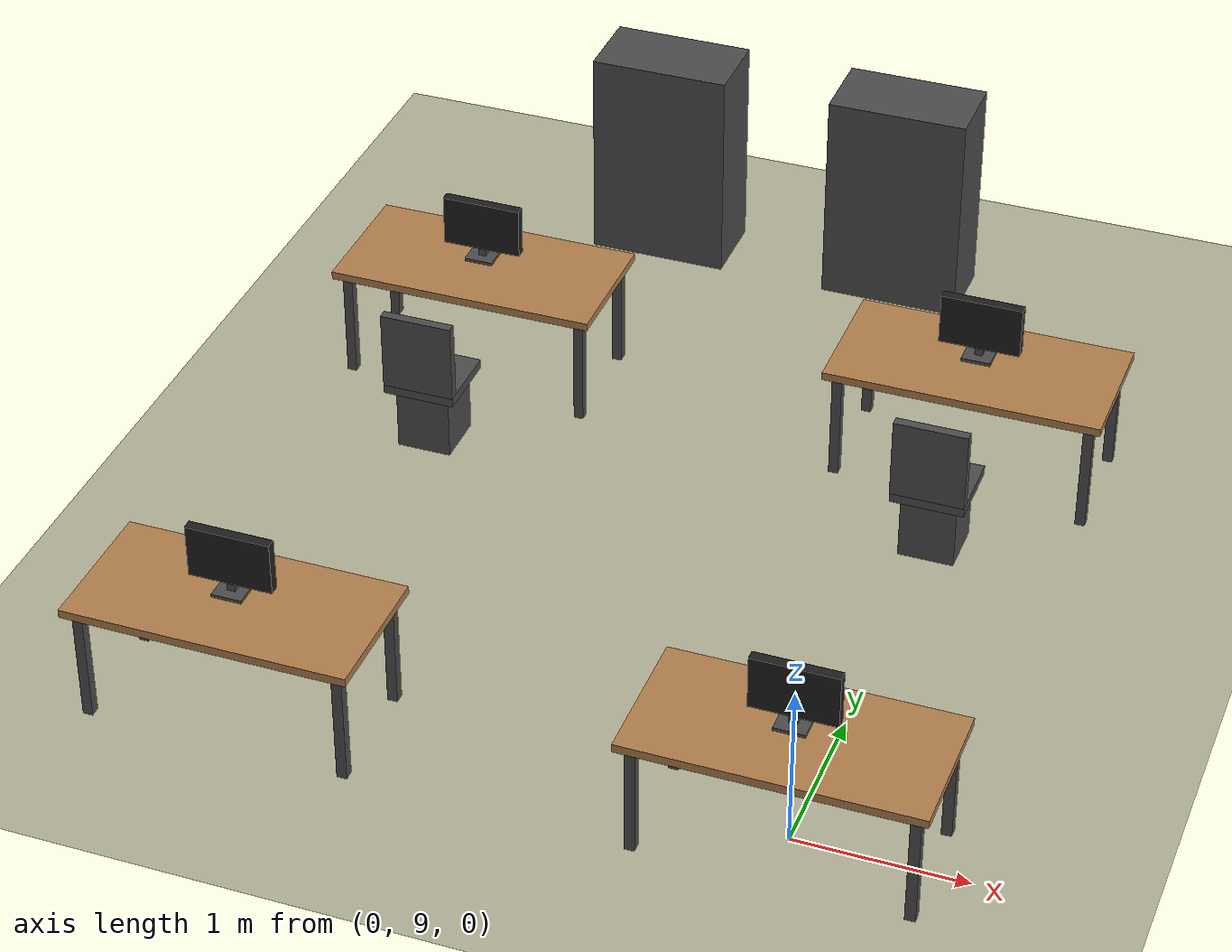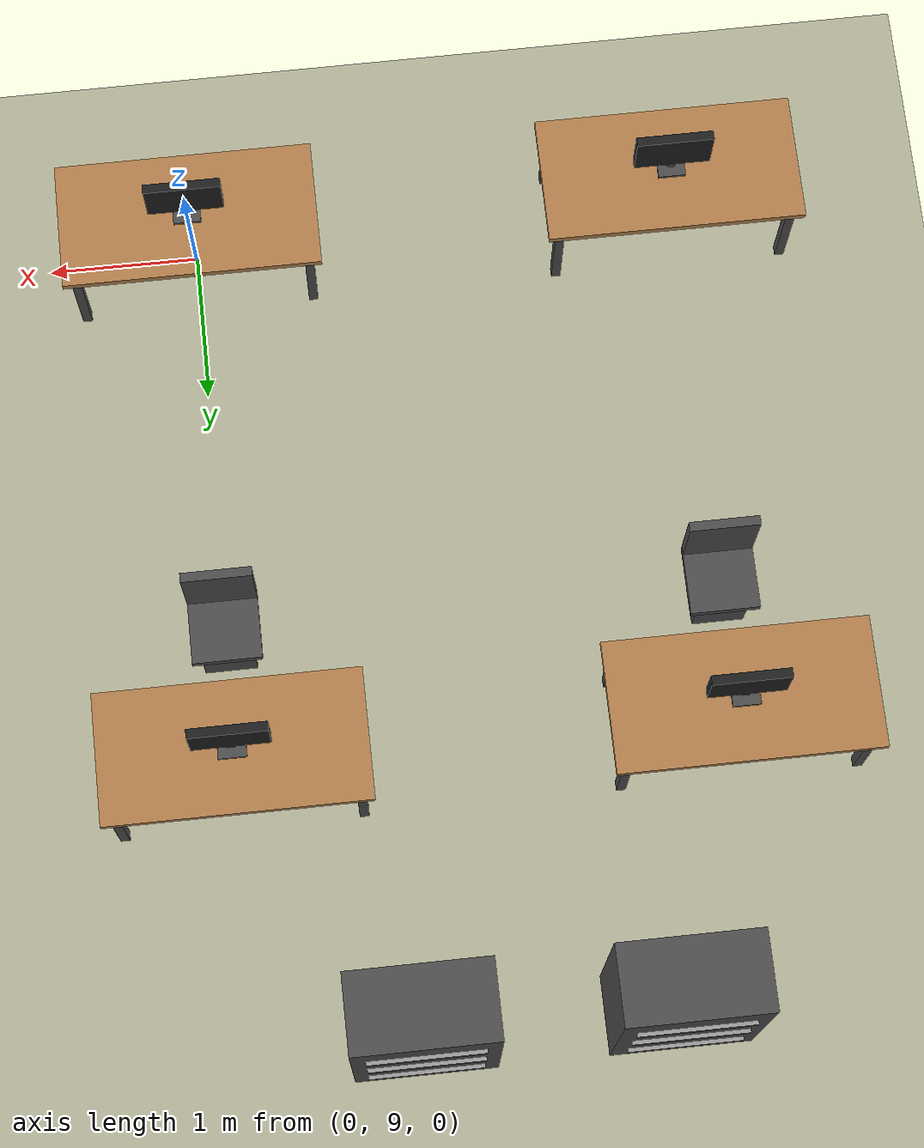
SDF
<sdf version="1.6">
 <world name="smart_building">
  <model name="ground_plane">
   <static>true</static>
   <link name="link">
    <collision name="collision">
     <geometry><plane><normal>0 0 1</normal><size>100 100</size></plane></geometry>
     <surface><friction><ode><mu>1.0</mu><mu2>1.0</mu2></ode></friction></surface>
    </collision>
    <visual name="visual">
     <geometry><plane><normal>0 0 1</normal><size>100 100</size></plane></geometry>
     <material>
      <script><uri>file://media/materials/scripts/gazebo.material</uri><name>Gazebo/Residential</name></script>
     </material>
    </visual>
   </link>
  </model>
  <model name="office_desk_3">
   <static>true</static>
   <pose>-3.2000 9.0000 0.0000 0.0000 0.0000 0.0000</pose>
   <link name="link_0">
    <pose>0.0000 0.0000 0.7250 0.0000 0.0000 0.0000</pose>
    <collision name="link_0_collision">
     <geometry><box><size>1.7000 0.8500 0.0500</size></box></geometry>
    </collision>
    <visual name="link_0_visual">
     <geometry><box><size>1.7000 0.8500 0.0500</size></box></geometry>
     <material>
      <script><uri>file://media/materials/scripts/gazebo.material</uri><name>Gazebo/Wood</name></script>
     </material>
    </visual>
   </link>
   <link name="link_1">
    <pose>-0.7700 -0.3450 0.3500 0.0000 0.0000 0.0000</pose>
    <collision name="link_1_collision">
     <geometry><box><size>0.0600 0.0600 0.7000</size></box></geometry>
    </collision>
    <visual name="link_1_visual">
     <geometry><box><size>0.0600 0.0600 0.7000</size></box></geometry>
     <material>
      <script><uri>file://media/materials/scripts/gazebo.material</uri><name>Gazebo/DarkGrey</name></script>
     </material>
    </visual>
   </link>
   <link name="link_2">
    <pose>-0.7700 0.3450 0.3500 0.0000 0.0000 0.0000</pose>
    <collision name="link_2_collision">
     <geometry><box><size>0.0600 0.0600 0.7000</size></box></geometry>
    </collision>
    <visual name="link_2_visual">
     <geometry><box><size>0.0600 0.0600 0.7000</size></box></geometry>
     <material>
      <script><uri>file://media/materials/scripts/gazebo.material</uri><name>Gazebo/DarkGrey</name></script>
     </material>
    </visual>
   </link>
   <link name="link_3">
    <pose>0.7700 -0.3450 0.3500 0.0000 0.0000 0.0000</pose>
    <collision name="link_3_collision">
     <geometry><box><size>0.0600 0.0600 0.7000</size></box></geometry>
    </collision>
    <visual name="link_3_visual">
     <geometry><box><size>0.0600 0.0600 0.7000</size></box></geometry>
     <material>
      <script><uri>file://media/materials/scripts/gazebo.material</uri><name>Gazebo/DarkGrey</name></script>
     </material>
    </visual>
   </link>
   <link name="link_4">
    <pose>0.7700 0.3450 0.3500 0.0000 0.0000 0.0000</pose>
    <collision name="link_4_collision">
     <geometry><box><size>0.0600 0.0600 0.7000</size></box></geometry>
    </collision>
    <visual name="link_4_visual">
     <geometry><box><size>0.0600 0.0600 0.7000</size></box></geometry>
     <material>
      <script><uri>file://media/materials/scripts/gazebo.material</uri><name>Gazebo/DarkGrey</name></script>
     </material>
    </visual>
   </link>
   <link name="link_5">
    <pose>0.0000 0.0000 1.0300 0.0000 0.0000 0.0000</pose>
    <collision name="link_5_collision">
     <geometry><box><size>0.5000 0.0600 0.3200</size></box></geometry>
    </collision>
    <visual name="link_5_visual">
     <geometry><box><size>0.5000 0.0600 0.3200</size></box></geometry>
     <material>
      <script><uri>file://media/materials/scripts/gazebo.material</uri><name>Gazebo/FlatBlack</name></script>
     </material>
    </visual>
   </link>
   <link name="link_6">
    <pose>0.0000 0.0000 0.8100 0.0000 0.0000 0.0000</pose>
    <collision name="link_6_collision">
     <geometry><box><size>0.1800 0.1800 0.0200</size></box></geometry>
    </collision>
    <visual name="link_6_visual">
     <geometry><box><size>0.1800 0.1800 0.0200</size></box></geometry>
     <material>
      <script><uri>file://media/materials/scripts/gazebo.material</uri><name>Gazebo/DarkGrey</name></script>
     </material>
    </visual>
   </link>
   <link name="link_7">
    <pose>0.0000 0.0000 0.8700 0.0000 0.0000 0.0000</pose>
    <collision name="link_7_collision">
     <geometry><box><size>0.0500 0.0500 0.1200</size></box></geometry>
    </collision>
    <visual name="link_7_visual">
     <geometry><box><size>0.0500 0.0500 0.1200</size></box></geometry>
     <material>
      <script><uri>file://media/materials/scripts/gazebo.material</uri><name>Gazebo/DarkGrey</name></script>
     </material>
    </visual>
   </link>
  </model>
  <model name="office_desk_4">
   <static>true</static>
   <pose>0.0000 9.0000 0.0000 0.0000 0.0000 0.0000</pose>
   <link name="link_0">
    <pose>0.0000 0.0000 0.7250 0.0000 0.0000 0.0000</pose>
    <collision name="link_0_collision">
     <geometry><box><size>1.7000 0.8500 0.0500</size></box></geometry>
    </collision>
    <visual name="link_0_visual">
     <geometry><box><size>1.7000 0.8500 0.0500</size></box></geometry>
     <material>
      <script><uri>file://media/materials/scripts/gazebo.material</uri><name>Gazebo/Wood</name></script>
     </material>
    </visual>
   </link>
   <link name="link_1">
    <pose>-0.7700 -0.3450 0.3500 0.0000 0.0000 0.0000</pose>
    <collision name="link_1_collision">
     <geometry><box><size>0.0600 0.0600 0.7000</size></box></geometry>
    </collision>
    <visual name="link_1_visual">
     <geometry><box><size>0.0600 0.0600 0.7000</size></box></geometry>
     <material>
      <script><uri>file://media/materials/scripts/gazebo.material</uri><name>Gazebo/DarkGrey</name></script>
     </material>
    </visual>
   </link>
   <link name="link_2">
    <pose>-0.7700 0.3450 0.3500 0.0000 0.0000 0.0000</pose>
    <collision name="link_2_collision">
     <geometry><box><size>0.0600 0.0600 0.7000</size></box></geometry>
    </collision>
    <visual name="link_2_visual">
     <geometry><box><size>0.0600 0.0600 0.7000</size></box></geometry>
     <material>
      <script><uri>file://media/materials/scripts/gazebo.material</uri><name>Gazebo/DarkGrey</name></script>
     </material>
    </visual>
   </link>
   <link name="link_3">
    <pose>0.7700 -0.3450 0.3500 0.0000 0.0000 0.0000</pose>
    <collision name="link_3_collision">
     <geometry><box><size>0.0600 0.0600 0.7000</size></box></geometry>
    </collision>
    <visual name="link_3_visual">
     <geometry><box><size>0.0600 0.0600 0.7000</size></box></geometry>
     <material>
      <script><uri>file://media/materials/scripts/gazebo.material</uri><name>Gazebo/DarkGrey</name></script>
     </material>
    </visual>
   </link>
   <link name="link_4">
    <pose>0.7700 0.3450 0.3500 0.0000 0.0000 0.0000</pose>
    <collision name="link_4_collision">
     <geometry><box><size>0.0600 0.0600 0.7000</size></box></geometry>
    </collision>
    <visual name="link_4_visual">
     <geometry><box><size>0.0600 0.0600 0.7000</size></box></geometry>
     <material>
      <script><uri>file://media/materials/scripts/gazebo.material</uri><name>Gazebo/DarkGrey</name></script>
     </material>
    </visual>
   </link>
   <link name="link_5">
    <pose>0.0000 0.0000 1.0300 0.0000 0.0000 0.0000</pose>
    <collision name="link_5_collision">
     <geometry><box><size>0.5000 0.0600 0.3200</size></box></geometry>
    </collision>
    <visual name="link_5_visual">
     <geometry><box><size>0.5000 0.0600 0.3200</size></box></geometry>
     <material>
      <script><uri>file://media/materials/scripts/gazebo.material</uri><name>Gazebo/FlatBlack</name></script>
     </material>
    </visual>
   </link>
   <link name="link_6">
    <pose>0.0000 0.0000 0.8100 0.0000 0.0000 0.0000</pose>
    <collision name="link_6_collision">
     <geometry><box><size>0.1800 0.1800 0.0200</size></box></geometry>
    </collision>
    <visual name="link_6_visual">
     <geometry><box><size>0.1800 0.1800 0.0200</size></box></geometry>
     <material>
      <script><uri>file://media/materials/scripts/gazebo.material</uri><name>Gazebo/DarkGrey</name></script>
     </material>
    </visual>
   </link>
   <link name="link_7">
    <pose>0.0000 0.0000 0.8700 0.0000 0.0000 0.0000</pose>
    <collision name="link_7_collision">
     <geometry><box><size>0.0500 0.0500 0.1200</size></box></geometry>
    </collision>
    <visual name="link_7_visual">
     <geometry><box><size>0.0500 0.0500 0.1200</size></box></geometry>
     <material>
      <script><uri>file://media/materials/scripts/gazebo.material</uri><name>Gazebo/DarkGrey</name></script>
     </material>
    </visual>
   </link>
  </model>
  <model name="office_desk_6">
   <static>true</static>
   <pose>-3.2000 12.6000 0.0000 0.0000 0.0000 0.0000</pose>
   <link name="link_0">
    <pose>0.0000 0.0000 0.7250 0.0000 0.0000 0.0000</pose>
    <collision name="link_0_collision">
     <geometry><box><size>1.7000 0.8500 0.0500</size></box></geometry>
    </collision>
    <visual name="link_0_visual">
     <geometry><box><size>1.7000 0.8500 0.0500</size></box></geometry>
     <material>
      <script><uri>file://media/materials/scripts/gazebo.material</uri><name>Gazebo/Wood</name></script>
     </material>
    </visual>
   </link>
   <link name="link_1">
    <pose>-0.7700 -0.3450 0.3500 0.0000 0.0000 0.0000</pose>
    <collision name="link_1_collision">
     <geometry><box><size>0.0600 0.0600 0.7000</size></box></geometry>
    </collision>
    <visual name="link_1_visual">
     <geometry><box><size>0.0600 0.0600 0.7000</size></box></geometry>
     <material>
      <script><uri>file://media/materials/scripts/gazebo.material</uri><name>Gazebo/DarkGrey</name></script>
     </material>
    </visual>
   </link>
   <link name="link_2">
    <pose>-0.7700 0.3450 0.3500 0.0000 0.0000 0.0000</pose>
    <collision name="link_2_collision">
     <geometry><box><size>0.0600 0.0600 0.7000</size></box></geometry>
    </collision>
    <visual name="link_2_visual">
     <geometry><box><size>0.0600 0.0600 0.7000</size></box></geometry>
     <material>
      <script><uri>file://media/materials/scripts/gazebo.material</uri><name>Gazebo/DarkGrey</name></script>
     </material>
    </visual>
   </link>
   <link name="link_3">
    <pose>0.7700 -0.3450 0.3500 0.0000 0.0000 0.0000</pose>
    <collision name="link_3_collision">
     <geometry><box><size>0.0600 0.0600 0.7000</size></box></geometry>
    </collision>
    <visual name="link_3_visual">
     <geometry><box><size>0.0600 0.0600 0.7000</size></box></geometry>
     <material>
      <script><uri>file://media/materials/scripts/gazebo.material</uri><name>Gazebo/DarkGrey</name></script>
     </material>
    </visual>
   </link>
   <link name="link_4">
    <pose>0.7700 0.3450 0.3500 0.0000 0.0000 0.0000</pose>
    <collision name="link_4_collision">
     <geometry><box><size>0.0600 0.0600 0.7000</size></box></geometry>
    </collision>
    <visual name="link_4_visual">
     <geometry><box><size>0.0600 0.0600 0.7000</size></box></geometry>
     <material>
      <script><uri>file://media/materials/scripts/gazebo.material</uri><name>Gazebo/DarkGrey</name></script>
     </material>
    </visual>
   </link>
   <link name="link_5">
    <pose>0.0000 0.0000 1.0300 0.0000 0.0000 0.0000</pose>
    <collision name="link_5_collision">
     <geometry><box><size>0.5000 0.0600 0.3200</size></box></geometry>
    </collision>
    <visual name="link_5_visual">
     <geometry><box><size>0.5000 0.0600 0.3200</size></box></geometry>
     <material>
      <script><uri>file://media/materials/scripts/gazebo.material</uri><name>Gazebo/FlatBlack</name></script>
     </material>
    </visual>
   </link>
   <link name="link_6">
    <pose>0.0000 0.0000 0.8100 0.0000 0.0000 0.0000</pose>
    <collision name="link_6_collision">
     <geometry><box><size>0.1800 0.1800 0.0200</size></box></geometry>
    </collision>
    <visual name="link_6_visual">
     <geometry><box><size>0.1800 0.1800 0.0200</size></box></geometry>
     <material>
      <script><uri>file://media/materials/scripts/gazebo.material</uri><name>Gazebo/DarkGrey</name></script>
     </material>
    </visual>
   </link>
   <link name="link_7">
    <pose>0.0000 0.0000 0.8700 0.0000 0.0000 0.0000</pose>
    <collision name="link_7_collision">
     <geometry><box><size>0.0500 0.0500 0.1200</size></box></geometry>
    </collision>
    <visual name="link_7_visual">
     <geometry><box><size>0.0500 0.0500 0.1200</size></box></geometry>
     <material>
      <script><uri>file://media/materials/scripts/gazebo.material</uri><name>Gazebo/DarkGrey</name></script>
     </material>
    </visual>
   </link>
  </model>
  <model name="office_chair_6">
   <static>true</static>
   <pose>-3.2000 11.7500 0.0000 0.0000 0.0000 0.0000</pose>
   <link name="link_0">
    <pose>0.0000 0.0000 0.4400 0.0000 0.0000 0.0000</pose>
    <collision name="link_0_collision">
     <geometry><box><size>0.4500 0.4500 0.0600</size></box></geometry>
    </collision>
    <visual name="link_0_visual">
     <geometry><box><size>0.4500 0.4500 0.0600</size></box></geometry>
     <material>
      <script><uri>file://media/materials/scripts/gazebo.material</uri><name>Gazebo/DarkGrey</name></script>
     </material>
    </visual>
   </link>
   <link name="link_1">
    <pose>0.0000 -0.2000 0.7200 0.0000 0.0000 0.0000</pose>
    <collision name="link_1_collision">
     <geometry><box><size>0.4500 0.0600 0.5000</size></box></geometry>
    </collision>
    <visual name="link_1_visual">
     <geometry><box><size>0.4500 0.0600 0.5000</size></box></geometry>
     <material>
      <script><uri>file://media/materials/scripts/gazebo.material</uri><name>Gazebo/DarkGrey</name></script>
     </material>
    </visual>
   </link>
   <link name="link_2">
    <pose>0.0000 0.0000 0.2100 0.0000 0.0000 0.0000</pose>
    <collision name="link_2_collision">
     <geometry><box><size>0.3400 0.3400 0.4200</size></box></geometry>
    </collision>
    <visual name="link_2_visual">
     <geometry><box><size>0.3400 0.3400 0.4200</size></box></geometry>
     <material>
      <script><uri>file://media/materials/scripts/gazebo.material</uri><name>Gazebo/DarkGrey</name></script>
     </material>
    </visual>
   </link>
  </model>
  <model name="office_desk_7">
   <static>true</static>
   <pose>0.0000 12.6000 0.0000 0.0000 0.0000 0.0000</pose>
   <link name="link_0">
    <pose>0.0000 0.0000 0.7250 0.0000 0.0000 0.0000</pose>
    <collision name="link_0_collision">
     <geometry><box><size>1.7000 0.8500 0.0500</size></box></geometry>
    </collision>
    <visual name="link_0_visual">
     <geometry><box><size>1.7000 0.8500 0.0500</size></box></geometry>
     <material>
      <script><uri>file://media/materials/scripts/gazebo.material</uri><name>Gazebo/Wood</name></script>
     </material>
    </visual>
   </link>
   <link name="link_1">
    <pose>-0.7700 -0.3450 0.3500 0.0000 0.0000 0.0000</pose>
    <collision name="link_1_collision">
     <geometry><box><size>0.0600 0.0600 0.7000</size></box></geometry>
    </collision>
    <visual name="link_1_visual">
     <geometry><box><size>0.0600 0.0600 0.7000</size></box></geometry>
     <material>
      <script><uri>file://media/materials/scripts/gazebo.material</uri><name>Gazebo/DarkGrey</name></script>
     </material>
    </visual>
   </link>
   <link name="link_2">
    <pose>-0.7700 0.3450 0.3500 0.0000 0.0000 0.0000</pose>
    <collision name="link_2_collision">
     <geometry><box><size>0.0600 0.0600 0.7000</size></box></geometry>
    </collision>
    <visual name="link_2_visual">
     <geometry><box><size>0.0600 0.0600 0.7000</size></box></geometry>
     <material>
      <script><uri>file://media/materials/scripts/gazebo.material</uri><name>Gazebo/DarkGrey</name></script>
     </material>
    </visual>
   </link>
   <link name="link_3">
    <pose>0.7700 -0.3450 0.3500 0.0000 0.0000 0.0000</pose>
    <collision name="link_3_collision">
     <geometry><box><size>0.0600 0.0600 0.7000</size></box></geometry>
    </collision>
    <visual name="link_3_visual">
     <geometry><box><size>0.0600 0.0600 0.7000</size></box></geometry>
     <material>
      <script><uri>file://media/materials/scripts/gazebo.material</uri><name>Gazebo/DarkGrey</name></script>
     </material>
    </visual>
   </link>
   <link name="link_4">
    <pose>0.7700 0.3450 0.3500 0.0000 0.0000 0.0000</pose>
    <collision name="link_4_collision">
     <geometry><box><size>0.0600 0.0600 0.7000</size></box></geometry>
    </collision>
    <visual name="link_4_visual">
     <geometry><box><size>0.0600 0.0600 0.7000</size></box></geometry>
     <material>
      <script><uri>file://media/materials/scripts/gazebo.material</uri><name>Gazebo/DarkGrey</name></script>
     </material>
    </visual>
   </link>
   <link name="link_5">
    <pose>0.0000 0.0000 1.0300 0.0000 0.0000 0.0000</pose>
    <collision name="link_5_collision">
     <geometry><box><size>0.5000 0.0600 0.3200</size></box></geometry>
    </collision>
    <visual name="link_5_visual">
     <geometry><box><size>0.5000 0.0600 0.3200</size></box></geometry>
     <material>
      <script><uri>file://media/materials/scripts/gazebo.material</uri><name>Gazebo/FlatBlack</name></script>
     </material>
    </visual>
   </link>
   <link name="link_6">
    <pose>0.0000 0.0000 0.8100 0.0000 0.0000 0.0000</pose>
    <collision name="link_6_collision">
     <geometry><box><size>0.1800 0.1800 0.0200</size></box></geometry>
    </collision>
    <visual name="link_6_visual">
     <geometry><box><size>0.1800 0.1800 0.0200</size></box></geometry>
     <material>
      <script><uri>file://media/materials/scripts/gazebo.material</uri><name>Gazebo/DarkGrey</name></script>
     </material>
    </visual>
   </link>
   <link name="link_7">
    <pose>0.0000 0.0000 0.8700 0.0000 0.0000 0.0000</pose>
    <collision name="link_7_collision">
     <geometry><box><size>0.0500 0.0500 0.1200</size></box></geometry>
    </collision>
    <visual name="link_7_visual">
     <geometry><box><size>0.0500 0.0500 0.1200</size></box></geometry>
     <material>
      <script><uri>file://media/materials/scripts/gazebo.material</uri><name>Gazebo/DarkGrey</name></script>
     </material>
    </visual>
   </link>
  </model>
  <model name="office_chair_7">
   <static>true</static>
   <pose>0.0000 11.7500 0.0000 0.0000 0.0000 0.0000</pose>
   <link name="link_0">
    <pose>0.0000 0.0000 0.4400 0.0000 0.0000 0.0000</pose>
    <collision name="link_0_collision">
     <geometry><box><size>0.4500 0.4500 0.0600</size></box></geometry>
    </collision>
    <visual name="link_0_visual">
     <geometry><box><size>0.4500 0.4500 0.0600</size></box></geometry>
     <material>
      <script><uri>file://media/materials/scripts/gazebo.material</uri><name>Gazebo/DarkGrey</name></script>
     </material>
    </visual>
   </link>
   <link name="link_1">
    <pose>0.0000 -0.2000 0.7200 0.0000 0.0000 0.0000</pose>
    <collision name="link_1_collision">
     <geometry><box><size>0.4500 0.0600 0.5000</size></box></geometry>
    </collision>
    <visual name="link_1_visual">
     <geometry><box><size>0.4500 0.0600 0.5000</size></box></geometry>
     <material>
      <script><uri>file://media/materials/scripts/gazebo.material</uri><name>Gazebo/DarkGrey</name></script>
     </material>
    </visual>
   </link>
   <link name="link_2">
    <pose>0.0000 0.0000 0.2100 0.0000 0.0000 0.0000</pose>
    <collision name="link_2_collision">
     <geometry><box><size>0.3400 0.3400 0.4200</size></box></geometry>
    </collision>
    <visual name="link_2_visual">
     <geometry><box><size>0.3400 0.3400 0.4200</size></box></geometry>
     <material>
      <script><uri>file://media/materials/scripts/gazebo.material</uri><name>Gazebo/DarkGrey</name></script>
     </material>
    </visual>
   </link>
  </model>
  <model name="office_cabinet_1">
   <static>true</static>
   <pose>-2.6000 14.4000 0.0000 0.0000 0.0000 3.1416</pose>
   <link name="link_0">
    <pose>0.0000 0.0000 0.7000 0.0000 0.0000 0.0000</pose>
    <collision name="link_0_collision">
     <geometry><box><size>0.9000 0.5000 1.4000</size></box></geometry>
    </collision>
    <visual name="link_0_visual">
     <geometry><box><size>0.9000 0.5000 1.4000</size></box></geometry>
     <material>
      <script><uri>file://media/materials/scripts/gazebo.material</uri><name>Gazebo/DarkGrey</name></script>
     </material>
    </visual>
   </link>
   <link name="link_1">
    <pose>0.0000 -0.2600 0.3000 0.0000 0.0000 0.0000</pose>
    <visual name="link_1_visual">
     <geometry><box><size>0.7200 0.0300 0.0400</size></box></geometry>
     <material>
      <script><uri>file://media/materials/scripts/gazebo.material</uri><name>Gazebo/Grey</name></script>
     </material>
    </visual>
   </link>
   <link name="link_2">
    <pose>0.0000 -0.2600 0.7000 0.0000 0.0000 0.0000</pose>
    <visual name="link_2_visual">
     <geometry><box><size>0.7200 0.0300 0.0400</size></box></geometry>
     <material>
      <script><uri>file://media/materials/scripts/gazebo.material</uri><name>Gazebo/Grey</name></script>
     </material>
    </visual>
   </link>
   <link name="link_3">
    <pose>0.0000 -0.2600 1.1000 0.0000 0.0000 0.0000</pose>
    <visual name="link_3_visual">
     <geometry><box><size>0.7200 0.0300 0.0400</size></box></geometry>
     <material>
      <script><uri>file://media/materials/scripts/gazebo.material</uri><name>Gazebo/Grey</name></script>
     </material>
    </visual>
   </link>
  </model>
  <model name="office_cabinet_2">
   <static>true</static>
   <pose>-1.0000 14.4000 0.0000 0.0000 0.0000 3.1416</pose>
   <link name="link_0">
    <pose>0.0000 0.0000 0.7000 0.0000 0.0000 0.0000</pose>
    <collision name="link_0_collision">
     <geometry><box><size>0.9000 0.5000 1.4000</size></box></geometry>
    </collision>
    <visual name="link_0_visual">
     <geometry><box><size>0.9000 0.5000 1.4000</size></box></geometry>
     <material>
      <script><uri>file://media/materials/scripts/gazebo.material</uri><name>Gazebo/DarkGrey</name></script>
     </material>
    </visual>
   </link>
   <link name="link_1">
    <pose>0.0000 -0.2600 0.3000 0.0000 0.0000 0.0000</pose>
    <visual name="link_1_visual">
     <geometry><box><size>0.7200 0.0300 0.0400</size></box></geometry>
     <material>
      <script><uri>file://media/materials/scripts/gazebo.material</uri><name>Gazebo/Grey</name></script>
     </material>
    </visual>
   </link>
   <link name="link_2">
    <pose>0.0000 -0.2600 0.7000 0.0000 0.0000 0.0000</pose>
    <visual name="link_2_visual">
     <geometry><box><size>0.7200 0.0300 0.0400</size></box></geometry>
     <material>
      <script><uri>file://media/materials/scripts/gazebo.material</uri><name>Gazebo/Grey</name></script>
     </material>
    </visual>
   </link>
   <link name="link_3">
    <pose>0.0000 -0.2600 1.1000 0.0000 0.0000 0.0000</pose>
    <visual name="link_3_visual">
     <geometry><box><size>0.7200 0.0300 0.0400</size></box></geometry>
     <material>
      <script><uri>file://media/materials/scripts/gazebo.material</uri><name>Gazebo/Grey</name></script>
     </material>
    </visual>
   </link>
  </model>
 </world>
</sdf>
